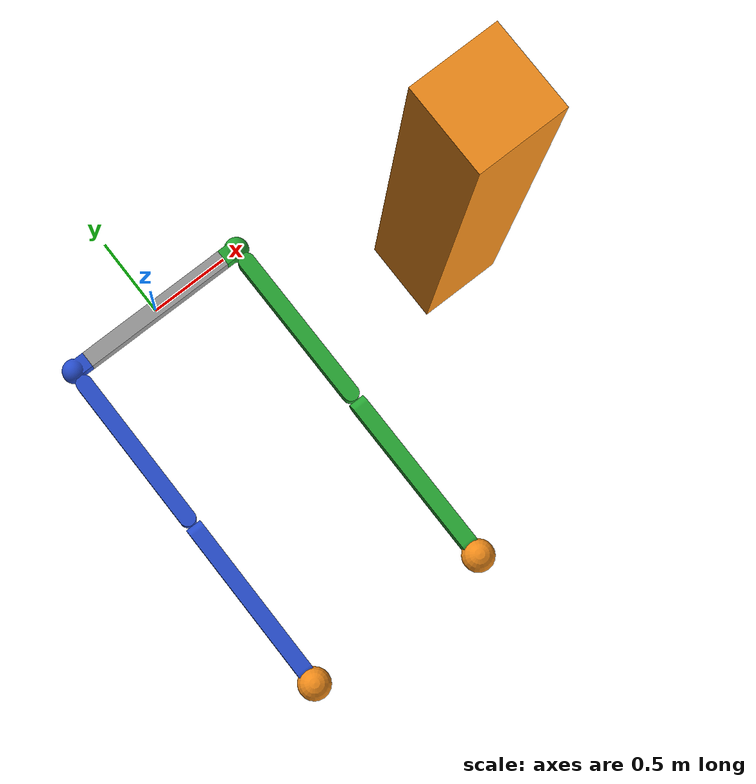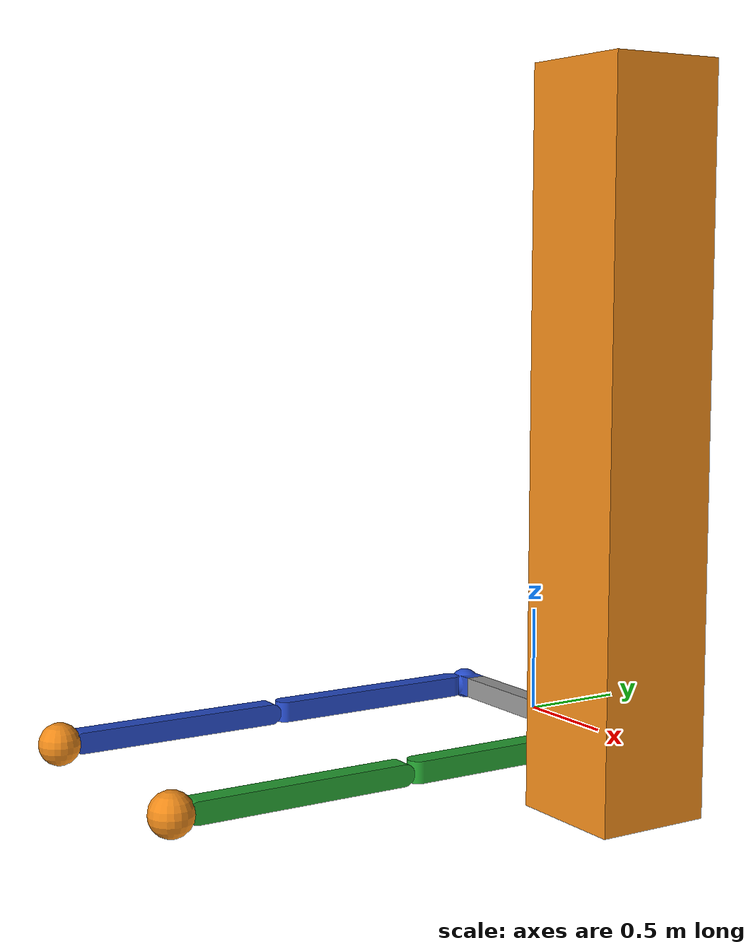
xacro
<?xml version="1.0"?>
<robot xmlns:xacro="http://www.ros.org/wiki/xacro"
       name="exo_simple" >

  <xacro:include filename="$(find exoskeleton_description)/urdf/base/base.urdf.xacro" />
  <xacro:include filename="$(find exoskeleton_description)/urdf/arm/arm.urdf.xacro"/>
  <xacro:include filename="$(find exoskeleton_description)/controller/ros_controller.urdf.xacro" />
  <xacro:include filename="$(find exoskeleton_description)/urdf/materials.urdf.xacro" />
  <xacro:include filename="$(find exoskeleton_description)/urdf/utilities.urdf.xacro" />

  <xacro:arg name="origin_xyz" default="0 0 0"/>
  <xacro:arg name="origin_rpy" default="0 0 0"/>

  <link name="world" />

  <xacro:base name="base" parent="world">
    <origin xyz="$(arg origin_xyz)" rpy="$(arg origin_rpy)" />
  </xacro:base>

  <xacro:arm name="arm_1" parent="base_link" color="Green">
    <origin xyz="0.5 0 0" rpy="3.1415 0 3.1415" />
  </xacro:arm>

  <xacro:arm name="arm_2" parent="base_link" color="Blue">
    <origin xyz="-0.5 0 0" rpy="0 0 0" />
  </xacro:arm>

    <joint name="obstacle_joint" type="fixed">
      <origin
        xyz="1.25 -1 0"
        rpy="0 0 0" />
      <parent
        link="world" />
      <child
        link="obstacle_link" />
    </joint>

    <link name="obstacle_link">
      <inertial>
        <origin xyz="0 0 0" rpy="0 0 0" />
        <mass value="1000" />
        <inertia
          ixx="1.0"
          ixy="0.0"
          ixz="0.0"
          iyy="0.0"
          iyz="0.0"
          izz="1.0" />
        </inertial>
      <visual>
        <origin xyz="0.25 0.25 1.5" rpy="0 0 0" />
        <geometry>
          <box size="0.5 0.5 3" />
        </geometry>
        <material name="Orange"/>
      </visual>
    </link>

</robot>

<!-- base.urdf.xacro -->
<robot xmlns:xacro="http://www.ros.org/wiki/xacro">

  <xacro:include filename="$(find exoskeleton_description)/urdf/base/base.gazebo.xacro" />
  <xacro:include filename="$(find exoskeleton_description)/urdf/base/base.transmission.xacro" />
  <xacro:include filename="$(find exoskeleton_description)/urdf/utilities.urdf.xacro" />

  <xacro:macro name="base" params="parent name *origin">

    <!-- Connection joint -->
    <joint name="${name}_footprint_joint" type="fixed">
      <xacro:insert_block name="origin"/>
      <parent link="${parent}"/>
      <child link="base_link"/>
    </joint>

    <link name="base_link">
      <inertial>
        <origin xyz="0 0 0" rpy="0 0 0" />
        <mass value="1" />
        <inertia
          ixx="1.0"
          ixy="0.0"
          ixz="0.0"
          iyy="1.0"
          iyz="0.0"
          izz="1.0" />
        </inertial>
      <visual>
        <origin xyz="-0.5 -0.05 -0.05" rpy="0 0 0" />
        <geometry>
          <mesh
            filename="package://exoskeleton_description/meshes/base_bulk.stl"
            scale="0.01 0.01 0.01" />
        </geometry>
        <material name="Grey"/>
      </visual>
    </link>

    <!--Extensions -->
    <xacro:base_gazebo name="${name}" />

  </xacro:macro>

</robot>

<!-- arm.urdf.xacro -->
<robot xmlns:xacro="http://www.ros.org/wiki/xacro">

  <xacro:include filename="$(find exoskeleton_description)/urdf/arm/arm.gazebo.xacro" />
  <xacro:include filename="$(find exoskeleton_description)/urdf/arm/arm.transmission.xacro" />
  <xacro:include filename="$(find exoskeleton_description)/urdf/utilities.urdf.xacro" />

  <xacro:property name="safety_controller_k_pos" value="100" />
  <xacro:property name="safety_controller_k_vel" value="100" />
  <xacro:property name="joint_damping" value="0.4" />
  <xacro:property name="joint_static_friction" value="0.4" />
  <xacro:property name="max_effort" value="300"/>
  <xacro:property name="max_velocity" value="10"/>

  <xacro:macro name="arm" params="parent name color *origin">

    <!-- Connection joint -->
    <joint name="${name}_joint" type="fixed">
      <xacro:insert_block name="origin"/>
      <parent link="${parent}"/>
      <child link="${name}_link_0"/>
    </joint>

    <link name="${name}_link_0">
      <inertial>
        <origin xyz="0 0 0" rpy="0 0 0" />
        <mass value="1" />
        <inertia
          ixx="1.0"
          ixy="0.0"
          ixz="0.0"
          iyy="1.0"
          iyz="0.0"
          izz="1.0" />
        </inertial>
      <visual>
        <origin xyz="-0.1 -0.05 -0.05" rpy="0 0 0" />
        <geometry>
          <mesh
            filename="package://exoskeleton_description/meshes/base_short.stl"
            scale="0.01 0.01 0.01" />
        </geometry>
        <material name="${color}"/>
      </visual>
    </link>

    <joint name="${name}_joint_1" type="revolute">
      <origin
        xyz="-0.1 0 0"
        rpy="0 3.1415 1.57" />
      <parent
        link="${name}_link_0" />
      <child
        link="${name}_link_1" />
      <axis xyz="0 0 1" />
      <limit lower="${-170 * PI / 180}" upper="${170 * PI / 180}"
             effort="${max_effort}" velocity="${max_velocity}" />
      <dynamics damping="${joint_damping}" friction="${joint_static_friction}"/>
    </joint>

    <link name="${name}_link_1">
      <inertial>
        <origin xyz="0.5 0 0" rpy="0 0 0" />
        <mass value="1" />
        <inertia
          ixx="1.0"
          ixy="0.0"
          ixz="0.0"
          iyy="0.0"
          iyz="0.0"
          izz="1.0" />
        </inertial>
      <visual>
        <origin xyz="0.1 -0.05 -0.05" rpy="0 0 0" />
        <geometry>
          <mesh
            filename="package://exoskeleton_description/meshes/link.stl"
            scale="0.01 0.01 0.01" />
        </geometry>
        <material name="${color}"/>
      </visual>
    </link>

    <joint name="${name}_joint_2" type="revolute">
      <origin
        xyz="1.15 0.05 0"
        rpy="1.57 0 0" />
      <parent
        link="${name}_link_1" />
      <child
        link="${name}_link_2" />
      <axis xyz="0 0 1" />
      <limit lower="${-170 * PI / 180}" upper="${170 * PI / 180}"
             effort="${max_effort}" velocity="${max_velocity}" />
      <dynamics damping="${joint_damping}" friction="${joint_static_friction}"/>
    </joint>

    <link name="${name}_link_2">
      <inertial>
        <origin xyz="0.5 0 0" rpy="0 0 0" />
        <mass value="1" />
        <inertia
          ixx="1.0"
          ixy="0.0"
          ixz="0.0"
          iyy="0.0"
          iyz="0.0"
          izz="1.0" />
        </inertial>
      <visual>
        <origin xyz="0.05 -0.05 0" rpy="0 0 0" />
        <geometry>
          <mesh
            filename="package://exoskeleton_description/meshes/link.stl"
            scale="0.01 0.01 0.01" />
        </geometry>
        <material name="${color}"/>
      </visual>
    </link>

    <joint name="${name}_joint_3" type="fixed">
      <origin
        xyz="1.15 0 0.05"
        rpy="1.57 0 0" />
      <parent link="${name}_link_2"/>
      <child link="${name}_link_3"/>
    </joint>

    <link name="${name}_link_3">
      <inertial>
        <origin xyz="0 0 0" rpy="0 0 0" />
        <mass value="0" />
        <inertia
          ixx="0.0"
          ixy="0.0"
          ixz="0.0"
          iyy="0.0"
          iyz="0.0"
          izz="0.0" />
        </inertial>
      <visual>
        <origin xyz="0 0 0" rpy="0 0 0" />
        <geometry>
          <sphere radius="0.1"/>
        </geometry>
        <material name="Orange"/>
      </visual>
    </link>

    <!--Extensions -->
    <xacro:arm_gazebo name="${name}" />
    <xacro:arm_transmission name="${name}"/>

  </xacro:macro>

</robot>
